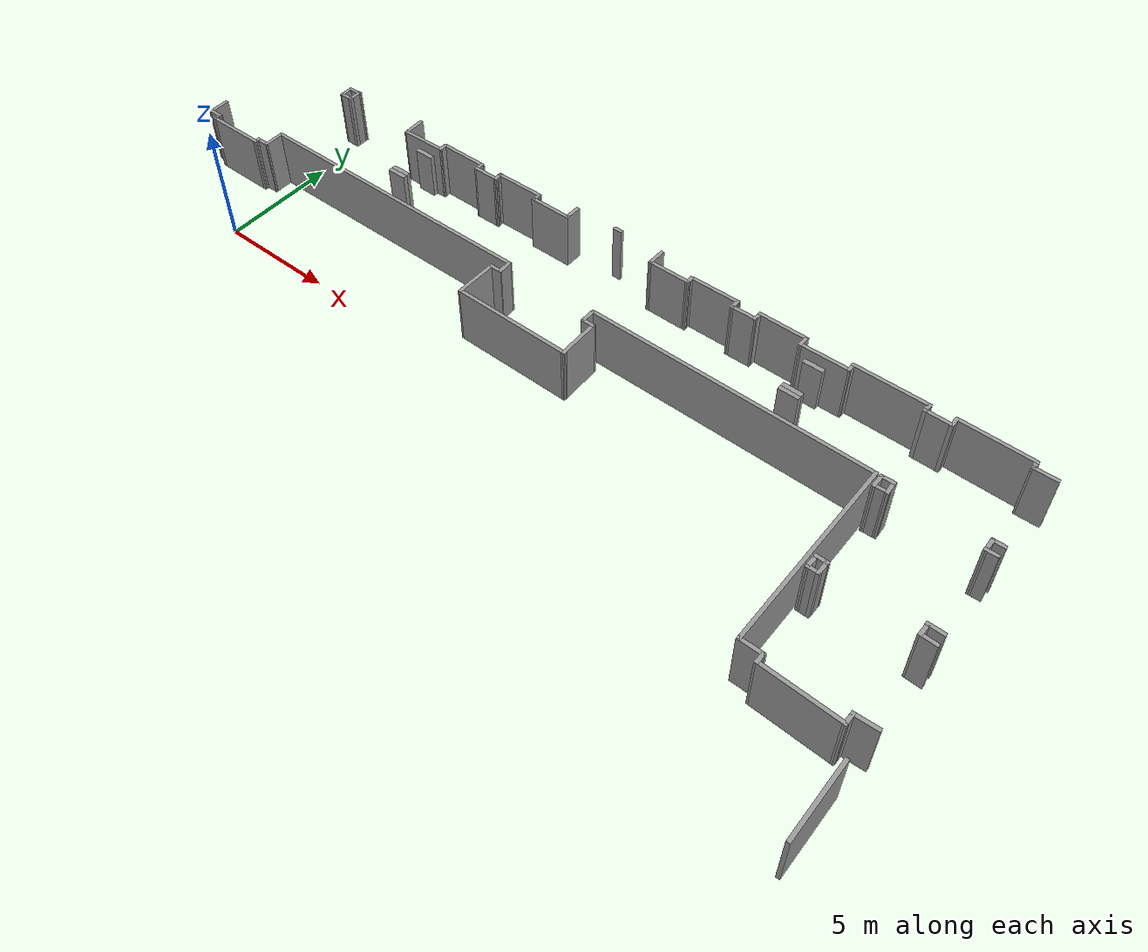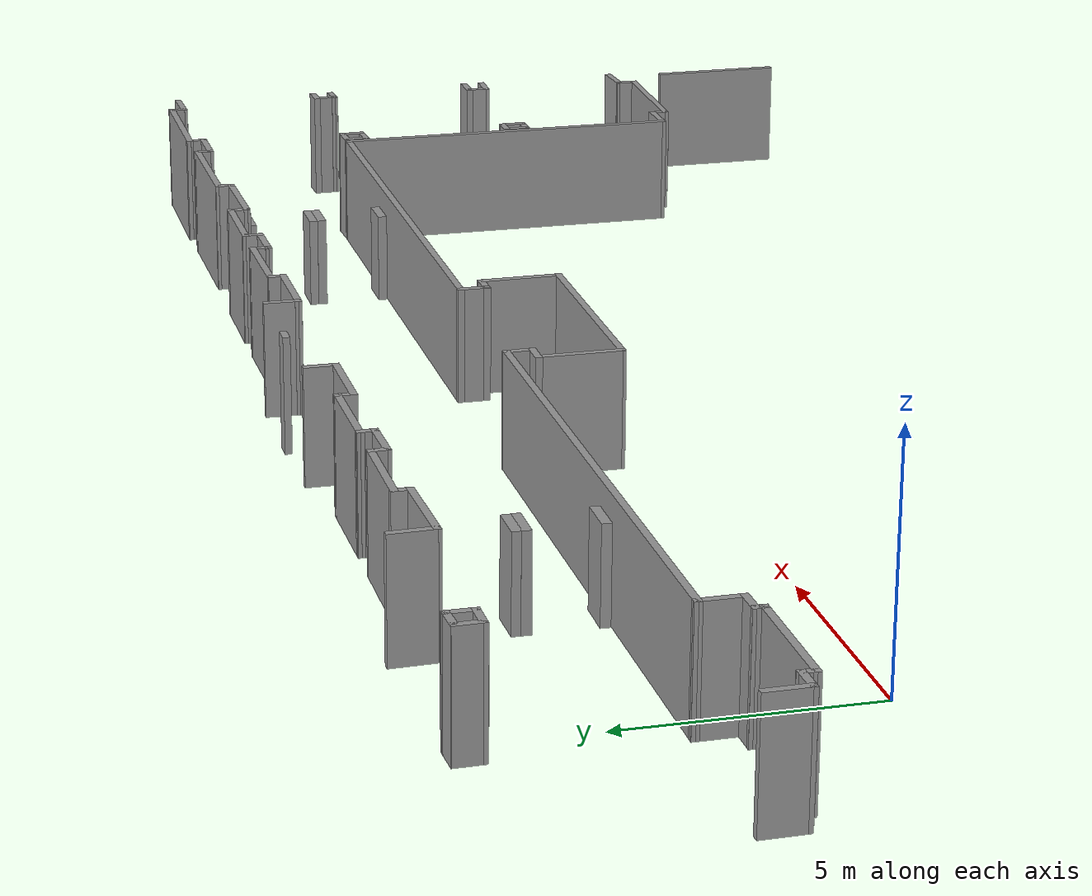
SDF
<sdf version="1.7">
 <model name="TD_n1_largo">
  <pose>-6.3187 -9.13173 0 0 -0 0</pose>
  <link name="Door_10">
   <collision name="Door_10_Collision">
    <geometry><box><size>0.833875 0.2 2</size></box></geometry>
    <pose>0 0 1 0 -0 0</pose>
   </collision>
   <visual name="Door_10_Visual">
    <pose>0 0 1 0 -0 0</pose>
    <geometry><box><size>0.833875 0.2 2</size></box></geometry>
    <material>
     <script><uri>file://media/materials/scripts/gazebo.material</uri><name>Gazebo/Grey</name></script>
    </material>
   </visual>
   <pose>29.7761 16.0483 0 0 -0 0</pose>
  </link>
  <link name="Door_11">
   <collision name="Door_11_Collision">
    <geometry><box><size>0.807425 0.2 2</size></box></geometry>
    <pose>0 0 1 0 -0 0</pose>
   </collision>
   <visual name="Door_11_Visual">
    <pose>0 0 1 0 -0 0</pose>
    <geometry><box><size>0.807425 0.2 2</size></box></geometry>
    <material>
     <script><uri>file://media/materials/scripts/gazebo.material</uri><name>Gazebo/Grey</name></script>
    </material>
   </visual>
   <pose>29.7497 13.0269 0 0 0 -3.14159</pose>
  </link>
  <link name="Door_12">
   <collision name="Door_12_Collision">
    <geometry><box><size>0.814523 0.2 2</size></box></geometry>
    <pose>0 0 1 0 -0 0</pose>
   </collision>
   <visual name="Door_12_Visual">
    <pose>0 0 1 0 -0 0</pose>
    <geometry><box><size>0.814523 0.2 2</size></box></geometry>
    <material>
     <script><uri>file://media/materials/scripts/gazebo.material</uri><name>Gazebo/Grey</name></script>
    </material>
   </visual>
   <pose>10.7562 14.6384 0 0 -0 -3.1326</pose>
  </link>
  <link name="Door_13">
   <collision name="Door_13_Collision">
    <geometry><box><size>0.827673 0.2 2</size></box></geometry>
    <pose>0 0 1 0 -0 0</pose>
   </collision>
   <visual name="Door_13_Visual">
    <pose>0 0 1 0 -0 0</pose>
    <geometry><box><size>0.827673 0.2 2</size></box></geometry>
    <material>
     <script><uri>file://media/materials/scripts/gazebo.material</uri><name>Gazebo/Grey</name></script>
    </material>
   </visual>
   <pose>10.762 14.4567 0 0 -0 0</pose>
  </link>
  <link name="Door_14">
   <collision name="Door_14_Collision">
    <geometry><box><size>0.821098 0.2 2</size></box></geometry>
    <pose>0 0 1 0 -0 0</pose>
   </collision>
   <visual name="Door_14_Visual">
    <pose>0 0 1 0 -0 0</pose>
    <geometry><box><size>0.821098 0.2 2</size></box></geometry>
    <material>
     <script><uri>file://media/materials/scripts/gazebo.material</uri><name>Gazebo/Grey</name></script>
    </material>
   </visual>
   <pose>10.7555 16.0808 0 0 -0 0</pose>
  </link>
  <link name="Door_15">
   <collision name="Door_15_Collision">
    <geometry><box><size>0.83 0.2 2</size></box></geometry>
    <pose>0 0 1 0 -0 0</pose>
   </collision>
   <visual name="Door_15_Visual">
    <pose>0 0 1 0 -0 0</pose>
    <geometry><box><size>0.83 0.2 2</size></box></geometry>
    <material>
     <script><uri>file://media/materials/scripts/gazebo.material</uri><name>Gazebo/Grey</name></script>
    </material>
   </visual>
   <pose>10.7527 13.0109 0 0 -0 3.13494</pose>
  </link>
  <link name="Door_8">
   <collision name="Door_8_Collision">
    <geometry><box><size>0.864128 0.2 2</size></box></geometry>
    <pose>0 0 1 0 -0 0</pose>
   </collision>
   <visual name="Door_8_Visual">
    <pose>0 0 1 0 -0 0</pose>
    <geometry><box><size>0.864128 0.2 2</size></box></geometry>
    <material>
     <script><uri>file://media/materials/scripts/gazebo.material</uri><name>Gazebo/Grey</name></script>
    </material>
   </visual>
   <pose>29.7933 14.4349 0 0 -0 0</pose>
  </link>
  <link name="Door_9">
   <collision name="Door_9_Collision">
    <geometry><box><size>0.851141 0.2 2</size></box></geometry>
    <pose>0 0 1 0 -0 0</pose>
   </collision>
   <visual name="Door_9_Visual">
    <pose>0 0 1 0 -0 0</pose>
    <geometry><box><size>0.851141 0.2 2</size></box></geometry>
    <material>
     <script><uri>file://media/materials/scripts/gazebo.material</uri><name>Gazebo/Grey</name></script>
    </material>
   </visual>
   <pose>29.7912 14.6154 0 0 -0 3.13243</pose>
  </link>
  <link name="Wall_411">
   <collision name="Wall_411_Collision">
    <geometry><box><size>0.930723 0.15 2.5</size></box></geometry>
    <pose>0 0 1.25 0 -0 0</pose>
   </collision>
   <visual name="Wall_411_Visual">
    <pose>0 0 1.25 0 -0 0</pose>
    <geometry><box><size>0.930723 0.15 2.5</size></box></geometry>
    <material>
     <script><uri>file://media/materials/scripts/gazebo.material</uri><name>Gazebo/Grey</name></script>
     <ambient>1 1 1 1</ambient>
    </material>
    <meta><layer>0</layer></meta>
   </visual>
   <pose>2.2234 12.4396 0 0 -0 -1.55385</pose>
  </link>
  <link name="Wall_412">
   <collision name="Wall_412_Collision">
    <geometry><box><size>0.647447 0.15 2.5</size></box></geometry>
    <pose>0 0 1.25 0 -0 0</pose>
   </collision>
   <visual name="Wall_412_Visual">
    <pose>0 0 1.25 0 -0 0</pose>
    <geometry><box><size>0.647447 0.15 2.5</size></box></geometry>
    <material>
     <script><uri>file://media/materials/scripts/gazebo.material</uri><name>Gazebo/Grey</name></script>
     <ambient>1 1 1 1</ambient>
    </material>
    <meta><layer>0</layer></meta>
   </visual>
   <pose>2.47863 12.0511 0 0 -0 0.006509</pose>
  </link>
  <link name="Wall_413">
   <collision name="Wall_413_Collision">
    <geometry><box><size>0.385426 0.15 2.5</size></box></geometry>
    <pose>0 0 1.25 0 -0 0</pose>
   </collision>
   <visual name="Wall_413_Visual">
    <pose>0 0 1.25 0 -0 0</pose>
    <geometry><box><size>0.385426 0.15 2.5</size></box></geometry>
    <material>
     <script><uri>file://media/materials/scripts/gazebo.material</uri><name>Gazebo/Grey</name></script>
     <ambient>1 1 1 1</ambient>
    </material>
    <meta><layer>0</layer></meta>
   </visual>
   <pose>2.72726 11.9354 0 0 -0 -1.5708</pose>
  </link>
  <link name="Wall_414">
   <collision name="Wall_414_Collision">
    <geometry><box><size>2.64161 0.15 2.5</size></box></geometry>
    <pose>0 0 1.25 0 -0 0</pose>
   </collision>
   <visual name="Wall_414_Visual">
    <pose>0 0 1.25 0 -0 0</pose>
    <geometry><box><size>2.64161 0.15 2.5</size></box></geometry>
    <material>
     <script><uri>file://media/materials/scripts/gazebo.material</uri><name>Gazebo/Grey</name></script>
     <ambient>1 1 1 1</ambient>
    </material>
    <meta><layer>0</layer></meta>
   </visual>
   <pose>3.97306 11.8213 0 0 -0 0.002697</pose>
  </link>
  <link name="Wall_415">
   <collision name="Wall_415_Collision">
    <geometry><box><size>0.30925 0.15 2.5</size></box></geometry>
    <pose>0 0 1.25 0 -0 0</pose>
   </collision>
   <visual name="Wall_415_Visual">
    <pose>0 0 1.25 0 -0 0</pose>
    <geometry><box><size>0.30925 0.15 2.5</size></box></geometry>
    <material>
     <script><uri>file://media/materials/scripts/gazebo.material</uri><name>Gazebo/Grey</name></script>
     <ambient>1 1 1 1</ambient>
    </material>
    <meta><layer>0</layer></meta>
   </visual>
   <pose>5.21886 11.904 0 0 -0 1.5708</pose>
  </link>
  <link name="Wall_416">
   <collision name="Wall_416_Collision">
    <geometry><box><size>0.641078 0.15 2.5</size></box></geometry>
    <pose>0 0 1.25 0 -0 0</pose>
   </collision>
   <visual name="Wall_416_Visual">
    <pose>0 0 1.25 0 -0 0</pose>
    <geometry><box><size>0.641078 0.15 2.5</size></box></geometry>
    <material>
     <script><uri>file://media/materials/scripts/gazebo.material</uri><name>Gazebo/Grey</name></script>
     <ambient>1 1 1 1</ambient>
    </material>
    <meta><layer>0</layer></meta>
   </visual>
   <pose>5.46436 11.9876 0 0 -0 0.017294</pose>
  </link>
  <link name="Wall_417">
   <collision name="Wall_417_Collision">
    <geometry><box><size>0.967438 0.15 2.5</size></box></geometry>
    <pose>0 0 1.25 0 -0 0</pose>
   </collision>
   <visual name="Wall_417_Visual">
    <pose>0 0 1.25 0 -0 0</pose>
    <geometry><box><size>0.967438 0.15 2.5</size></box></geometry>
    <material>
     <script><uri>file://media/materials/scripts/gazebo.material</uri><name>Gazebo/Grey</name></script>
     <ambient>1 1 1 1</ambient>
    </material>
    <meta><layer>0</layer></meta>
   </visual>
   <pose>5.70552 12.4006 0 0 -0 1.58143</pose>
  </link>
  <link name="Wall_419">
   <collision name="Wall_419_Collision">
    <geometry><box><size>12.6567 0.15 2.5</size></box></geometry>
    <pose>0 0 1.25 0 -0 0</pose>
   </collision>
   <visual name="Wall_419_Visual">
    <pose>0 0 1.25 0 -0 0</pose>
    <geometry><box><size>12.6567 0.15 2.5</size></box></geometry>
    <material>
     <script><uri>file://media/materials/scripts/gazebo.material</uri><name>Gazebo/Grey</name></script>
     <ambient>1 1 1 1</ambient>
    </material>
    <meta><layer>0</layer></meta>
   </visual>
   <pose>11.9545 12.8354 0 0 -0 0.004173</pose>
  </link>
  <link name="Wall_420">
   <collision name="Wall_420_Collision">
    <geometry><box><size>0.655404 0.15 2.5</size></box></geometry>
    <pose>0 0 1.25 0 -0 0</pose>
   </collision>
   <visual name="Wall_420_Visual">
    <pose>0 0 1.25 0 -0 0</pose>
    <geometry><box><size>0.655404 0.15 2.5</size></box></geometry>
    <material>
     <script><uri>file://media/materials/scripts/gazebo.material</uri><name>Gazebo/Grey</name></script>
     <ambient>1 1 1 1</ambient>
    </material>
    <meta><layer>0</layer></meta>
   </visual>
   <pose>18.2211 12.6088 0 0 -0 -1.51821</pose>
  </link>
  <link name="Wall_423">
   <collision name="Wall_423_Collision">
    <geometry><box><size>0.59009 0.15 2.5</size></box></geometry>
    <pose>0 0 1.25 0 -0 0</pose>
   </collision>
   <visual name="Wall_423_Visual">
    <pose>0 0 1.25 0 -0 0</pose>
    <geometry><box><size>0.59009 0.15 2.5</size></box></geometry>
    <material>
     <script><uri>file://media/materials/scripts/gazebo.material</uri><name>Gazebo/Grey</name></script>
     <ambient>1 1 1 1</ambient>
    </material>
    <meta><layer>0</layer></meta>
   </visual>
   <pose>18.0056 12.3329 0 0 -0 3.14159</pose>
  </link>
  <link name="Wall_424">
   <collision name="Wall_424_Collision">
    <geometry><box><size>1.86166 0.15 2.5</size></box></geometry>
    <pose>0 0 1.25 0 -0 0</pose>
   </collision>
   <visual name="Wall_424_Visual">
    <pose>0 0 1.25 0 -0 0</pose>
    <geometry><box><size>1.86166 0.15 2.5</size></box></geometry>
    <material>
     <script><uri>file://media/materials/scripts/gazebo.material</uri><name>Gazebo/Grey</name></script>
     <ambient>1 1 1 1</ambient>
    </material>
    <meta><layer>0</layer></meta>
   </visual>
   <pose>17.7858 11.477 0 0 -0 -1.5708</pose>
  </link>
  <link name="Wall_425">
   <collision name="Wall_425_Collision">
    <geometry><box><size>5.1 0.15 2.5</size></box></geometry>
    <pose>0 0 1.25 0 -0 0</pose>
   </collision>
   <visual name="Wall_425_Visual">
    <pose>0 0 1.25 0 -0 0</pose>
    <geometry><box><size>5.1 0.15 2.5</size></box></geometry>
    <material>
     <script><uri>file://media/materials/scripts/gazebo.material</uri><name>Gazebo/Grey</name></script>
     <ambient>1 1 1 1</ambient>
    </material>
    <meta><layer>0</layer></meta>
   </visual>
   <pose>20.2608 10.6096 0 0 -0 -0.004673</pose>
  </link>
  <link name="Wall_426">
   <collision name="Wall_426_Collision">
    <geometry><box><size>1.83917 0.15 2.5</size></box></geometry>
    <pose>0 0 1.25 0 -0 0</pose>
   </collision>
   <visual name="Wall_426_Visual">
    <pose>0 0 1.25 0 -0 0</pose>
    <geometry><box><size>1.83917 0.15 2.5</size></box></geometry>
    <material>
     <script><uri>file://media/materials/scripts/gazebo.material</uri><name>Gazebo/Grey</name></script>
     <ambient>1 1 1 1</ambient>
    </material>
    <meta><layer>0</layer></meta>
   </visual>
   <pose>22.7242 11.4423 0 0 -0 1.58449</pose>
  </link>
  <link name="Wall_427">
   <collision name="Wall_427_Collision">
    <geometry><box><size>0.589482 0.15 2.5</size></box></geometry>
    <pose>0 0 1.25 0 -0 0</pose>
   </collision>
   <visual name="Wall_427_Visual">
    <pose>0 0 1.25 0 -0 0</pose>
    <geometry><box><size>0.589482 0.15 2.5</size></box></geometry>
    <material>
     <script><uri>file://media/materials/scripts/gazebo.material</uri><name>Gazebo/Grey</name></script>
     <ambient>1 1 1 1</ambient>
    </material>
    <meta><layer>0</layer></meta>
   </visual>
   <pose>22.4929 12.2866 0 0 -0 3.14159</pose>
  </link>
  <link name="Wall_428">
   <collision name="Wall_428_Collision">
    <geometry><box><size>0.705135 0.15 2.5</size></box></geometry>
    <pose>0 0 1.25 0 -0 0</pose>
   </collision>
   <visual name="Wall_428_Visual">
    <pose>0 0 1.25 0 -0 0</pose>
    <geometry><box><size>0.705135 0.15 2.5</size></box></geometry>
    <material>
     <script><uri>file://media/materials/scripts/gazebo.material</uri><name>Gazebo/Grey</name></script>
     <ambient>1 1 1 1</ambient>
    </material>
    <meta><layer>0</layer></meta>
   </visual>
   <pose>22.2732 12.5642 0 0 -0 1.5708</pose>
  </link>
  <link name="Wall_429">
   <collision name="Wall_429_Collision">
    <geometry><box><size>11.993 0.15 2.5</size></box></geometry>
    <pose>0 0 1.25 0 -0 0</pose>
   </collision>
   <visual name="Wall_429_Visual">
    <pose>0 0 1.25 0 -0 0</pose>
    <geometry><box><size>11.993 0.15 2.5</size></box></geometry>
    <material>
     <script><uri>file://media/materials/scripts/gazebo.material</uri><name>Gazebo/Grey</name></script>
     <ambient>1 1 1 1</ambient>
    </material>
    <meta><layer>0</layer></meta>
   </visual>
   <pose>28.1946 12.8417 0 0 -0 0</pose>
  </link>
  <link name="Wall_430">
   <collision name="Wall_430_Collision">
    <geometry><box><size>8.0607 0.15 2.5</size></box></geometry>
    <pose>0 0 1.25 0 -0 0</pose>
   </collision>
   <visual name="Wall_430_Visual">
    <pose>0 0 1.25 0 -0 0</pose>
    <geometry><box><size>8.0607 0.15 2.5</size></box></geometry>
    <material>
     <script><uri>file://media/materials/scripts/gazebo.material</uri><name>Gazebo/Grey</name></script>
     <ambient>1 1 1 1</ambient>
    </material>
    <meta><layer>0</layer></meta>
   </visual>
   <pose>34.1276 8.8864 0 0 -0 -1.56787</pose>
  </link>
  <link name="Wall_432">
   <collision name="Wall_432_Collision">
    <geometry><box><size>1.00583 0.15 2.5</size></box></geometry>
    <pose>0 0 1.25 0 -0 0</pose>
   </collision>
   <visual name="Wall_432_Visual">
    <pose>0 0 1.25 0 -0 0</pose>
    <geometry><box><size>1.00583 0.15 2.5</size></box></geometry>
    <material>
     <script><uri>file://media/materials/scripts/gazebo.material</uri><name>Gazebo/Grey</name></script>
     <ambient>1 1 1 1</ambient>
    </material>
    <meta><layer>0</layer></meta>
   </visual>
   <pose>34.5671 4.90794 0 0 -0 0</pose>
  </link>
  <link name="Wall_433">
   <collision name="Wall_433_Collision">
    <geometry><box><size>0.473829 0.15 2.5</size></box></geometry>
    <pose>0 0 1.25 0 -0 0</pose>
   </collision>
   <visual name="Wall_433_Visual">
    <pose>0 0 1.25 0 -0 0</pose>
    <geometry><box><size>0.473829 0.15 2.5</size></box></geometry>
    <material>
     <script><uri>file://media/materials/scripts/gazebo.material</uri><name>Gazebo/Grey</name></script>
     <ambient>1 1 1 1</ambient>
    </material>
    <meta><layer>0</layer></meta>
   </visual>
   <pose>34.995 4.74602 0 0 -0 -1.5708</pose>
  </link>
  <link name="Wall_434">
   <collision name="Wall_434_Collision">
    <geometry><box><size>3.20464 0.15 2.5</size></box></geometry>
    <pose>0 0 1.25 0 -0 0</pose>
   </collision>
   <visual name="Wall_434_Visual">
    <pose>0 0 1.25 0 -0 0</pose>
    <geometry><box><size>3.20464 0.15 2.5</size></box></geometry>
    <material>
     <script><uri>file://media/materials/scripts/gazebo.material</uri><name>Gazebo/Grey</name></script>
     <ambient>1 1 1 1</ambient>
    </material>
    <meta><layer>0</layer></meta>
   </visual>
   <pose>36.5216 4.54941 0 0 -0 -0.022723</pose>
  </link>
  <link name="Wall_435">
   <collision name="Wall_435_Collision">
    <geometry><box><size>0.54322 0.15 2.5</size></box></geometry>
    <pose>0 0 1.25 0 -0 0</pose>
   </collision>
   <visual name="Wall_435_Visual">
    <pose>0 0 1.25 0 -0 0</pose>
    <geometry><box><size>0.54322 0.15 2.5</size></box></geometry>
    <material>
     <script><uri>file://media/materials/scripts/gazebo.material</uri><name>Gazebo/Grey</name></script>
     <ambient>1 1 1 1</ambient>
    </material>
    <meta><layer>0</layer></meta>
   </visual>
   <pose>38.0482 4.71133 0 0 -0 1.5708</pose>
  </link>
  <link name="Wall_436">
   <collision name="Wall_436_Collision">
    <geometry><box><size>0.983986 0.15 2.5</size></box></geometry>
    <pose>0 0 1.25 0 -0 0</pose>
   </collision>
   <visual name="Wall_436_Visual">
    <pose>0 0 1.25 0 -0 0</pose>
    <geometry><box><size>0.983986 0.15 2.5</size></box></geometry>
    <material>
     <script><uri>file://media/materials/scripts/gazebo.material</uri><name>Gazebo/Grey</name></script>
     <ambient>1 1 1 1</ambient>
    </material>
    <meta><layer>0</layer></meta>
   </visual>
   <pose>38.4646 4.93107 0 0 -0 0.055499</pose>
  </link>
  <link name="Wall_439">
   <collision name="Wall_439_Collision">
    <geometry><box><size>3.06455 0.15 2.5</size></box></geometry>
    <pose>0 0 1.25 0 -0 0</pose>
   </collision>
   <visual name="Wall_439_Visual">
    <pose>0 0 1.25 0 -0 0</pose>
    <geometry><box><size>3.06455 0.15 2.5</size></box></geometry>
    <material>
     <script><uri>file://media/materials/scripts/gazebo.material</uri><name>Gazebo/Grey</name></script>
     <ambient>1 1 1 1</ambient>
    </material>
    <meta><layer>0</layer></meta>
   </visual>
   <pose>38.6612 2.10913 0 0 -0 -1.56286</pose>
  </link>
  <link name="Wall_507">
   <collision name="Wall_507_Collision">
    <geometry><box><size>0.539581 0.15 2.5</size></box></geometry>
    <pose>0 0 1.25 0 -0 0</pose>
   </collision>
   <visual name="Wall_507_Visual">
    <pose>0 0 1.25 0 -0 0</pose>
    <geometry><box><size>0.539581 0.15 2.5</size></box></geometry>
    <material>
     <script><uri>file://media/materials/scripts/gazebo.material</uri><name>Gazebo/Grey</name></script>
     <ambient>1 1 1 1</ambient>
    </material>
    <meta><layer>0</layer></meta>
   </visual>
   <pose>34.5441 8.84377 0 0 -0 0.002465</pose>
  </link>
  <link name="Wall_508">
   <collision name="Wall_508_Collision">
    <geometry><box><size>0.640034 0.15 2.5</size></box></geometry>
    <pose>0 0 1.25 0 -0 0</pose>
   </collision>
   <visual name="Wall_508_Visual">
    <pose>0 0 1.25 0 -0 0</pose>
    <geometry><box><size>0.640034 0.15 2.5</size></box></geometry>
    <material>
     <script><uri>file://media/materials/scripts/gazebo.material</uri><name>Gazebo/Grey</name></script>
     <ambient>1 1 1 1</ambient>
    </material>
    <meta><layer>0</layer></meta>
   </visual>
   <pose>34.7389 8.59939 0 0 -0 -1.5708</pose>
  </link>
  <link name="Wall_509">
   <collision name="Wall_509_Collision">
    <geometry><box><size>0.552651 0.15 2.5</size></box></geometry>
    <pose>0 0 1.25 0 -0 0</pose>
   </collision>
   <visual name="Wall_509_Visual">
    <pose>0 0 1.25 0 -0 0</pose>
    <geometry><box><size>0.552651 0.15 2.5</size></box></geometry>
    <material>
     <script><uri>file://media/materials/scripts/gazebo.material</uri><name>Gazebo/Grey</name></script>
     <ambient>1 1 1 1</ambient>
    </material>
    <meta><layer>0</layer></meta>
   </visual>
   <pose>34.5377 8.35453 0 0 -0 3.14159</pose>
  </link>
  <link name="Wall_510">
   <collision name="Wall_510_Collision">
    <geometry><box><size>0.605078 0.15 2.5</size></box></geometry>
    <pose>0 0 1.25 0 -0 0</pose>
   </collision>
   <visual name="Wall_510_Visual">
    <pose>0 0 1.25 0 -0 0</pose>
    <geometry><box><size>0.605078 0.15 2.5</size></box></geometry>
    <material>
     <script><uri>file://media/materials/scripts/gazebo.material</uri><name>Gazebo/Grey</name></script>
     <ambient>1 1 1 1</ambient>
    </material>
    <meta><layer>0</layer></meta>
   </visual>
   <pose>34.3453 8.5819 0 0 -0 1.53235</pose>
  </link>
  <link name="Wall_512">
   <collision name="Wall_512_Collision">
    <geometry><box><size>0.70659 0.15 2.5</size></box></geometry>
    <pose>0 0 1.25 0 -0 0</pose>
   </collision>
   <visual name="Wall_512_Visual">
    <pose>0 0 1.25 0 -0 0</pose>
    <geometry><box><size>0.70659 0.15 2.5</size></box></geometry>
    <material>
     <script><uri>file://media/materials/scripts/gazebo.material</uri><name>Gazebo/Grey</name></script>
     <ambient>1 1 1 1</ambient>
    </material>
    <meta><layer>0</layer></meta>
   </visual>
   <pose>38.5233 8.86068 0 0 -0 0</pose>
  </link>
  <link name="Wall_514">
   <collision name="Wall_514_Collision">
    <geometry><box><size>0.706793 0.15 2.5</size></box></geometry>
    <pose>0 0 1.25 0 -0 0</pose>
   </collision>
   <visual name="Wall_514_Visual">
    <pose>0 0 1.25 0 -0 0</pose>
    <geometry><box><size>0.706793 0.15 2.5</size></box></geometry>
    <material>
     <script><uri>file://media/materials/scripts/gazebo.material</uri><name>Gazebo/Grey</name></script>
     <ambient>1 1 1 1</ambient>
    </material>
    <meta><layer>0</layer></meta>
   </visual>
   <pose>38.532 8.4085 0 0 -0 3.11035</pose>
  </link>
  <link name="Wall_515">
   <collision name="Wall_515_Collision">
    <geometry><box><size>0.58487 0.15 2.5</size></box></geometry>
    <pose>0 0 1.25 0 -0 0</pose>
   </collision>
   <visual name="Wall_515_Visual">
    <pose>0 0 1.25 0 -0 0</pose>
    <geometry><box><size>0.58487 0.15 2.5</size></box></geometry>
    <material>
     <script><uri>file://media/materials/scripts/gazebo.material</uri><name>Gazebo/Grey</name></script>
     <ambient>1 1 1 1</ambient>
    </material>
    <meta><layer>0</layer></meta>
   </visual>
   <pose>38.2581 8.63459 0 0 -0 1.5508</pose>
  </link>
  <link name="Wall_522">
   <collision name="Wall_522_Collision">
    <geometry><box><size>0.60811 0.15 2.5</size></box></geometry>
    <pose>0 0 1.25 0 -0 0</pose>
   </collision>
   <visual name="Wall_522_Visual">
    <pose>0 0 1.25 0 -0 0</pose>
    <geometry><box><size>0.60811 0.15 2.5</size></box></geometry>
    <material>
     <script><uri>file://media/materials/scripts/gazebo.material</uri><name>Gazebo/Grey</name></script>
     <ambient>1 1 1 1</ambient>
    </material>
    <meta><layer>0</layer></meta>
   </visual>
   <pose>34.5564 12.8536 0 0 -0 0.04544</pose>
  </link>
  <link name="Wall_523">
   <collision name="Wall_523_Collision">
    <geometry><box><size>0.61319 0.15 2.5</size></box></geometry>
    <pose>0 0 1.25 0 -0 0</pose>
   </collision>
   <visual name="Wall_523_Visual">
    <pose>0 0 1.25 0 -0 0</pose>
    <geometry><box><size>0.61319 0.15 2.5</size></box></geometry>
    <material>
     <script><uri>file://media/materials/scripts/gazebo.material</uri><name>Gazebo/Grey</name></script>
     <ambient>1 1 1 1</ambient>
    </material>
    <meta><layer>0</layer></meta>
   </visual>
   <pose>34.797 12.6327 0 0 -0 -1.52084</pose>
  </link>
  <link name="Wall_524">
   <collision name="Wall_524_Collision">
    <geometry><box><size>0.636293 0.15 2.5</size></box></geometry>
    <pose>0 0 1.25 0 -0 0</pose>
   </collision>
   <visual name="Wall_524_Visual">
    <pose>0 0 1.25 0 -0 0</pose>
    <geometry><box><size>0.636293 0.15 2.5</size></box></geometry>
    <material>
     <script><uri>file://media/materials/scripts/gazebo.material</uri><name>Gazebo/Grey</name></script>
     <ambient>1 1 1 1</ambient>
    </material>
    <meta><layer>0</layer></meta>
   </visual>
   <pose>34.5657 12.3898 0 0 -0 -3.09401</pose>
  </link>
  <link name="Wall_525">
   <collision name="Wall_525_Collision">
    <geometry><box><size>0.59009 0.15 2.5</size></box></geometry>
    <pose>0 0 1.25 0 -0 0</pose>
   </collision>
   <visual name="Wall_525_Visual">
    <pose>0 0 1.25 0 -0 0</pose>
    <geometry><box><size>0.59009 0.15 2.5</size></box></geometry>
    <material>
     <script><uri>file://media/materials/scripts/gazebo.material</uri><name>Gazebo/Grey</name></script>
     <ambient>1 1 1 1</ambient>
    </material>
    <meta><layer>0</layer></meta>
   </visual>
   <pose>34.3229 12.598 0 0 -0 1.5708</pose>
  </link>
  <link name="Wall_527">
   <collision name="Wall_527_Collision">
    <geometry><box><size>0.571013 0.15 2.5</size></box></geometry>
    <pose>0 0 1.25 0 -0 0</pose>
   </collision>
   <visual name="Wall_527_Visual">
    <pose>0 0 1.25 0 -0 0</pose>
    <geometry><box><size>0.571013 0.15 2.5</size></box></geometry>
    <material>
     <script><uri>file://media/materials/scripts/gazebo.material</uri><name>Gazebo/Grey</name></script>
     <ambient>1 1 1 1</ambient>
    </material>
    <meta><layer>0</layer></meta>
   </visual>
   <pose>38.534 12.8392 0 0 -0 0.018934</pose>
  </link>
  <link name="Wall_529">
   <collision name="Wall_529_Collision">
    <geometry><box><size>0.547631 0.15 2.5</size></box></geometry>
    <pose>0 0 1.25 0 -0 0</pose>
   </collision>
   <visual name="Wall_529_Visual">
    <pose>0 0 1.25 0 -0 0</pose>
    <geometry><box><size>0.547631 0.15 2.5</size></box></geometry>
    <material>
     <script><uri>file://media/materials/scripts/gazebo.material</uri><name>Gazebo/Grey</name></script>
     <ambient>1 1 1 1</ambient>
    </material>
    <meta><layer>0</layer></meta>
   </visual>
   <pose>38.5329 12.3869 0 0 -0 -3.10827</pose>
  </link>
  <link name="Wall_530">
   <collision name="Wall_530_Collision">
    <geometry><box><size>0.559975 0.15 2.5</size></box></geometry>
    <pose>0 0 1.25 0 -0 0</pose>
   </collision>
   <visual name="Wall_530_Visual">
    <pose>0 0 1.25 0 -0 0</pose>
    <geometry><box><size>0.559975 0.15 2.5</size></box></geometry>
    <material>
     <script><uri>file://media/materials/scripts/gazebo.material</uri><name>Gazebo/Grey</name></script>
     <ambient>1 1 1 1</ambient>
    </material>
    <meta><layer>0</layer></meta>
   </visual>
   <pose>38.3346 12.5853 0 0 -0 1.5708</pose>
  </link>
  <link name="Wall_568">
   <collision name="Wall_568_Collision">
    <geometry><box><size>1.00719 0.15 2.5</size></box></geometry>
    <pose>0 0 1.25 0 -0 0</pose>
   </collision>
   <visual name="Wall_568_Visual">
    <pose>0 0 1.25 0 -0 0</pose>
    <geometry><box><size>1.00719 0.15 2.5</size></box></geometry>
    <material>
     <script><uri>file://media/materials/scripts/gazebo.material</uri><name>Gazebo/Grey</name></script>
     <ambient>1 1 1 1</ambient>
    </material>
    <meta><layer>0</layer></meta>
   </visual>
   <pose>38.4576 16.2984 0 0 -0 -3.12119</pose>
  </link>
  <link name="Wall_569">
   <collision name="Wall_569_Collision">
    <geometry><box><size>0.447845 0.15 2.5</size></box></geometry>
    <pose>0 0 1.25 0 -0 0</pose>
   </collision>
   <visual name="Wall_569_Visual">
    <pose>0 0 1.25 0 -0 0</pose>
    <geometry><box><size>0.447845 0.15 2.5</size></box></geometry>
    <material>
     <script><uri>file://media/materials/scripts/gazebo.material</uri><name>Gazebo/Grey</name></script>
     <ambient>1 1 1 1</ambient>
    </material>
    <meta><layer>0</layer></meta>
   </visual>
   <pose>38.0203 16.4384 0 0 -0 1.62955</pose>
  </link>
  <link name="Wall_587">
   <collision name="Wall_587_Collision">
    <geometry><box><size>3.10186 0.15 2.5</size></box></geometry>
    <pose>0 0 1.25 0 -0 0</pose>
   </collision>
   <visual name="Wall_587_Visual">
    <pose>0 0 1.25 0 -0 0</pose>
    <geometry><box><size>3.10186 0.15 2.5</size></box></geometry>
    <material>
     <script><uri>file://media/materials/scripts/gazebo.material</uri><name>Gazebo/Grey</name></script>
     <ambient>1 1 1 1</ambient>
    </material>
    <meta><layer>0</layer></meta>
   </visual>
   <pose>36.5357 16.592 0 0 -0 3.1382</pose>
  </link>
  <link name="Wall_588">
   <collision name="Wall_588_Collision">
    <geometry><box><size>0.492522 0.15 2.5</size></box></geometry>
    <pose>0 0 1.25 0 -0 0</pose>
   </collision>
   <visual name="Wall_588_Visual">
    <pose>0 0 1.25 0 -0 0</pose>
    <geometry><box><size>0.492522 0.15 2.5</size></box></geometry>
    <material>
     <script><uri>file://media/materials/scripts/gazebo.material</uri><name>Gazebo/Grey</name></script>
     <ambient>1 1 1 1</ambient>
    </material>
    <meta><layer>0</layer></meta>
   </visual>
   <pose>35.0597 16.4261 0 0 -0 -1.5708</pose>
  </link>
  <link name="Wall_589">
   <collision name="Wall_589_Collision">
    <geometry><box><size>1.17515 0.15 2.5</size></box></geometry>
    <pose>0 0 1.25 0 -0 0</pose>
   </collision>
   <visual name="Wall_589_Visual">
    <pose>0 0 1.25 0 -0 0</pose>
    <geometry><box><size>1.17515 0.15 2.5</size></box></geometry>
    <material>
     <script><uri>file://media/materials/scripts/gazebo.material</uri><name>Gazebo/Grey</name></script>
     <ambient>1 1 1 1</ambient>
    </material>
    <meta><layer>0</layer></meta>
   </visual>
   <pose>34.5472 16.2553 0 0 -0 3.14131</pose>
  </link>
  <link name="Wall_590">
   <collision name="Wall_590_Collision">
    <geometry><box><size>0.451729 0.15 2.5</size></box></geometry>
    <pose>0 0 1.25 0 -0 0</pose>
   </collision>
   <visual name="Wall_590_Visual">
    <pose>0 0 1.25 0 -0 0</pose>
    <geometry><box><size>0.451729 0.15 2.5</size></box></geometry>
    <material>
     <script><uri>file://media/materials/scripts/gazebo.material</uri><name>Gazebo/Grey</name></script>
     <ambient>1 1 1 1</ambient>
    </material>
    <meta><layer>0</layer></meta>
   </visual>
   <pose>34.0343 16.4061 0 0 -0 1.57294</pose>
  </link>
  <link name="Wall_591">
   <collision name="Wall_591_Collision">
    <geometry><box><size>3.14699 0.15 2.5</size></box></geometry>
    <pose>0 0 1.25 0 -0 0</pose>
   </collision>
   <visual name="Wall_591_Visual">
    <pose>0 0 1.25 0 -0 0</pose>
    <geometry><box><size>3.14699 0.15 2.5</size></box></geometry>
    <material>
     <script><uri>file://media/materials/scripts/gazebo.material</uri><name>Gazebo/Grey</name></script>
     <ambient>1 1 1 1</ambient>
    </material>
    <meta><layer>0</layer></meta>
   </visual>
   <pose>32.5355 16.5468 0 0 -0 -3.13488</pose>
  </link>
  <link name="Wall_592">
   <collision name="Wall_592_Collision">
    <geometry><box><size>0.444556 0.15 2.5</size></box></geometry>
    <pose>0 0 1.25 0 -0 0</pose>
   </collision>
   <visual name="Wall_592_Visual">
    <pose>0 0 1.25 0 -0 0</pose>
    <geometry><box><size>0.444556 0.15 2.5</size></box></geometry>
    <material>
     <script><uri>file://media/materials/scripts/gazebo.material</uri><name>Gazebo/Grey</name></script>
     <ambient>1 1 1 1</ambient>
    </material>
    <meta><layer>0</layer></meta>
   </visual>
   <pose>31.0348 16.3894 0 0 -0 -1.5861</pose>
  </link>
  <link name="Wall_593">
   <collision name="Wall_593_Collision">
    <geometry><box><size>2.13715 0.15 2.5</size></box></geometry>
    <pose>0 0 1.25 0 -0 0</pose>
   </collision>
   <visual name="Wall_593_Visual">
    <pose>0 0 1.25 0 -0 0</pose>
    <geometry><box><size>2.13715 0.15 2.5</size></box></geometry>
    <material>
     <script><uri>file://media/materials/scripts/gazebo.material</uri><name>Gazebo/Grey</name></script>
     <ambient>1 1 1 1</ambient>
    </material>
    <meta><layer>0</layer></meta>
   </visual>
   <pose>30.0391 16.2285 0 0 -0 -3.12785</pose>
  </link>
  <link name="Wall_594">
   <collision name="Wall_594_Collision">
    <geometry><box><size>0.512044 0.15 2.5</size></box></geometry>
    <pose>0 0 1.25 0 -0 0</pose>
   </collision>
   <visual name="Wall_594_Visual">
    <pose>0 0 1.25 0 -0 0</pose>
    <geometry><box><size>0.512044 0.15 2.5</size></box></geometry>
    <material>
     <script><uri>file://media/materials/scripts/gazebo.material</uri><name>Gazebo/Grey</name></script>
     <ambient>1 1 1 1</ambient>
    </material>
    <meta><layer>0</layer></meta>
   </visual>
   <pose>29.0458 16.3959 0 0 -0 1.5708</pose>
  </link>
  <link name="Wall_595">
   <collision name="Wall_595_Collision">
    <geometry><box><size>2.12113 0.15 2.5</size></box></geometry>
    <pose>0 0 1.25 0 -0 0</pose>
   </collision>
   <visual name="Wall_595_Visual">
    <pose>0 0 1.25 0 -0 0</pose>
    <geometry><box><size>2.12113 0.15 2.5</size></box></geometry>
    <material>
     <script><uri>file://media/materials/scripts/gazebo.material</uri><name>Gazebo/Grey</name></script>
     <ambient>1 1 1 1</ambient>
    </material>
    <meta><layer>0</layer></meta>
   </visual>
   <pose>28.0602 16.5769 0 0 -0 3.14159</pose>
  </link>
  <link name="Wall_596">
   <collision name="Wall_596_Collision">
    <geometry><box><size>0.471668 0.15 2.5</size></box></geometry>
    <pose>0 0 1.25 0 -0 0</pose>
   </collision>
   <visual name="Wall_596_Visual">
    <pose>0 0 1.25 0 -0 0</pose>
    <geometry><box><size>0.471668 0.15 2.5</size></box></geometry>
    <material>
     <script><uri>file://media/materials/scripts/gazebo.material</uri><name>Gazebo/Grey</name></script>
     <ambient>1 1 1 1</ambient>
    </material>
    <meta><layer>0</layer></meta>
   </visual>
   <pose>27.0698 16.4162 0 0 -0 -1.60075</pose>
  </link>
  <link name="Wall_597">
   <collision name="Wall_597_Collision">
    <geometry><box><size>1.12874 0.15 2.5</size></box></geometry>
    <pose>0 0 1.25 0 -0 0</pose>
   </collision>
   <visual name="Wall_597_Visual">
    <pose>0 0 1.25 0 -0 0</pose>
    <geometry><box><size>1.12874 0.15 2.5</size></box></geometry>
    <material>
     <script><uri>file://media/materials/scripts/gazebo.material</uri><name>Gazebo/Grey</name></script>
     <ambient>1 1 1 1</ambient>
    </material>
    <meta><layer>0</layer></meta>
   </visual>
   <pose>26.5757 16.2488 0 0 -0 -3.12808</pose>
  </link>
  <link name="Wall_598">
   <collision name="Wall_598_Collision">
    <geometry><box><size>0.485128 0.15 2.5</size></box></geometry>
    <pose>0 0 1.25 0 -0 0</pose>
   </collision>
   <visual name="Wall_598_Visual">
    <pose>0 0 1.25 0 -0 0</pose>
    <geometry><box><size>0.485128 0.15 2.5</size></box></geometry>
    <material>
     <script><uri>file://media/materials/scripts/gazebo.material</uri><name>Gazebo/Grey</name></script>
     <ambient>1 1 1 1</ambient>
    </material>
    <meta><layer>0</layer></meta>
   </visual>
   <pose>26.0877 16.4096 0 0 -0 1.56268</pose>
  </link>
  <link name="Wall_599">
   <collision name="Wall_599_Collision">
    <geometry><box><size>2.16146 0.15 2.5</size></box></geometry>
    <pose>0 0 1.25 0 -0 0</pose>
   </collision>
   <visual name="Wall_599_Visual">
    <pose>0 0 1.25 0 -0 0</pose>
    <geometry><box><size>2.16146 0.15 2.5</size></box></geometry>
    <material>
     <script><uri>file://media/materials/scripts/gazebo.material</uri><name>Gazebo/Grey</name></script>
     <ambient>1 1 1 1</ambient>
    </material>
    <meta><layer>0</layer></meta>
   </visual>
   <pose>25.0834 16.5669 0 0 -0 -3.13159</pose>
  </link>
  <link name="Wall_655">
   <collision name="Wall_655_Collision">
    <geometry><box><size>0.403601 0.15 2.5</size></box></geometry>
    <pose>0 0 1.25 0 -0 0</pose>
   </collision>
   <visual name="Wall_655_Visual">
    <pose>0 0 1.25 0 -0 0</pose>
    <geometry><box><size>0.403601 0.15 2.5</size></box></geometry>
    <material>
     <script><uri>file://media/materials/scripts/gazebo.material</uri><name>Gazebo/Grey</name></script>
     <ambient>1 1 1 1</ambient>
    </material>
    <meta><layer>0</layer></meta>
   </visual>
   <pose>24.0398 16.4077 0 0 -0 -1.56905</pose>
  </link>
  <link name="Wall_656">
   <collision name="Wall_656_Collision">
    <geometry><box><size>1.86859 0.15 2.5</size></box></geometry>
    <pose>0 0 1.25 0 -0 0</pose>
   </collision>
   <visual name="Wall_656_Visual">
    <pose>0 0 1.25 0 -0 0</pose>
    <geometry><box><size>1.86859 0.15 2.5</size></box></geometry>
    <material>
     <script><uri>file://media/materials/scripts/gazebo.material</uri><name>Gazebo/Grey</name></script>
     <ambient>1 1 1 1</ambient>
    </material>
    <meta><layer>0</layer></meta>
   </visual>
   <pose>23.1807 16.2809 0 0 -0 3.14159</pose>
  </link>
  <link name="Wall_657">
   <collision name="Wall_657_Collision">
    <geometry><box><size>0.804153 0.15 2.5</size></box></geometry>
    <pose>0 0 1.25 0 -0 0</pose>
   </collision>
   <visual name="Wall_657_Visual">
    <pose>0 0 1.25 0 -0 0</pose>
    <geometry><box><size>0.804153 0.15 2.5</size></box></geometry>
    <material>
     <script><uri>file://media/materials/scripts/gazebo.material</uri><name>Gazebo/Grey</name></script>
     <ambient>1 1 1 1</ambient>
    </material>
    <meta><layer>0</layer></meta>
   </visual>
   <pose>22.329 16.6079 0 0 -0 1.54754</pose>
  </link>
  <link name="Wall_659">
   <collision name="Wall_659_Collision">
    <geometry><box><size>0.393815 0.15 2.5</size></box></geometry>
    <pose>0 0 1.25 0 -0 0</pose>
   </collision>
   <visual name="Wall_659_Visual">
    <pose>0 0 1.25 0 -0 0</pose>
    <geometry><box><size>0.393815 0.15 2.5</size></box></geometry>
    <material>
     <script><uri>file://media/materials/scripts/gazebo.material</uri><name>Gazebo/Grey</name></script>
     <ambient>1 1 1 1</ambient>
    </material>
    <meta><layer>0</layer></meta>
   </visual>
   <pose>20.253 16.9349 0 0 -0 3.14159</pose>
  </link>
  <link name="Wall_661">
   <collision name="Wall_661_Collision">
    <geometry><box><size>0.743141 0.15 2.5</size></box></geometry>
    <pose>0 0 1.25 0 -0 0</pose>
   </collision>
   <visual name="Wall_661_Visual">
    <pose>0 0 1.25 0 -0 0</pose>
    <geometry><box><size>0.743141 0.15 2.5</size></box></geometry>
    <material>
     <script><uri>file://media/materials/scripts/gazebo.material</uri><name>Gazebo/Grey</name></script>
     <ambient>1 1 1 1</ambient>
    </material>
    <meta><layer>0</layer></meta>
   </visual>
   <pose>18.2455 16.5775 0 0 -0 -1.5708</pose>
  </link>
  <link name="Wall_662">
   <collision name="Wall_662_Collision">
    <geometry><box><size>1.85338 0.15 2.5</size></box></geometry>
    <pose>0 0 1.25 0 -0 0</pose>
   </collision>
   <visual name="Wall_662_Visual">
    <pose>0 0 1.25 0 -0 0</pose>
    <geometry><box><size>1.85338 0.15 2.5</size></box></geometry>
    <material>
     <script><uri>file://media/materials/scripts/gazebo.material</uri><name>Gazebo/Grey</name></script>
     <ambient>1 1 1 1</ambient>
    </material>
    <meta><layer>0</layer></meta>
   </visual>
   <pose>17.3938 16.2809 0 0 -0 3.14159</pose>
  </link>
  <link name="Wall_663">
   <collision name="Wall_663_Collision">
    <geometry><box><size>0.454175 0.15 2.5</size></box></geometry>
    <pose>0 0 1.25 0 -0 0</pose>
   </collision>
   <visual name="Wall_663_Visual">
    <pose>0 0 1.25 0 -0 0</pose>
    <geometry><box><size>0.454175 0.15 2.5</size></box></geometry>
    <material>
     <script><uri>file://media/materials/scripts/gazebo.material</uri><name>Gazebo/Grey</name></script>
     <ambient>1 1 1 1</ambient>
    </material>
    <meta><layer>0</layer></meta>
   </visual>
   <pose>16.5421 16.433 0 0 -0 1.5708</pose>
  </link>
  <link name="Wall_664">
   <collision name="Wall_664_Collision">
    <geometry><box><size>2.17282 0.15 2.5</size></box></geometry>
    <pose>0 0 1.25 0 -0 0</pose>
   </collision>
   <visual name="Wall_664_Visual">
    <pose>0 0 1.25 0 -0 0</pose>
    <geometry><box><size>2.17282 0.15 2.5</size></box></geometry>
    <material>
     <script><uri>file://media/materials/scripts/gazebo.material</uri><name>Gazebo/Grey</name></script>
     <ambient>1 1 1 1</ambient>
    </material>
    <meta><layer>0</layer></meta>
   </visual>
   <pose>15.5307 16.5775 0 0 -0 -3.13407</pose>
  </link>
  <link name="Wall_665">
   <collision name="Wall_665_Collision">
    <geometry><box><size>0.438966 0.15 2.5</size></box></geometry>
    <pose>0 0 1.25 0 -0 0</pose>
   </collision>
   <visual name="Wall_665_Visual">
    <pose>0 0 1.25 0 -0 0</pose>
    <geometry><box><size>0.438966 0.15 2.5</size></box></geometry>
    <material>
     <script><uri>file://media/materials/scripts/gazebo.material</uri><name>Gazebo/Grey</name></script>
     <ambient>1 1 1 1</ambient>
    </material>
    <meta><layer>0</layer></meta>
   </visual>
   <pose>14.527 16.4254 0 0 -0 -1.51821</pose>
  </link>
  <link name="Wall_666">
   <collision name="Wall_666_Collision">
    <geometry><box><size>1.15378 0.15 2.5</size></box></geometry>
    <pose>0 0 1.25 0 -0 0</pose>
   </collision>
   <visual name="Wall_666_Visual">
    <pose>0 0 1.25 0 -0 0</pose>
    <geometry><box><size>1.15378 0.15 2.5</size></box></geometry>
    <material>
     <script><uri>file://media/materials/scripts/gazebo.material</uri><name>Gazebo/Grey</name></script>
     <ambient>1 1 1 1</ambient>
    </material>
    <meta><layer>0</layer></meta>
   </visual>
   <pose>14.0327 16.2733 0 0 -0 -3.12644</pose>
  </link>
  <link name="Wall_667">
   <collision name="Wall_667_Collision">
    <geometry><box><size>0.454555 0.15 2.5</size></box></geometry>
    <pose>0 0 1.25 0 -0 0</pose>
   </collision>
   <visual name="Wall_667_Visual">
    <pose>0 0 1.25 0 -0 0</pose>
    <geometry><box><size>0.454555 0.15 2.5</size></box></geometry>
    <material>
     <script><uri>file://media/materials/scripts/gazebo.material</uri><name>Gazebo/Grey</name></script>
     <ambient>1 1 1 1</ambient>
    </material>
    <meta><layer>0</layer></meta>
   </visual>
   <pose>13.5232 16.4178 0 0 -0 1.62075</pose>
  </link>
  <link name="Wall_668">
   <collision name="Wall_668_Collision">
    <geometry><box><size>2.14235 0.15 2.5</size></box></geometry>
    <pose>0 0 1.25 0 -0 0</pose>
   </collision>
   <visual name="Wall_668_Visual">
    <pose>0 0 1.25 0 -0 0</pose>
    <geometry><box><size>2.14235 0.15 2.5</size></box></geometry>
    <material>
     <script><uri>file://media/materials/scripts/gazebo.material</uri><name>Gazebo/Grey</name></script>
     <ambient>1 1 1 1</ambient>
    </material>
    <meta><layer>0</layer></meta>
   </visual>
   <pose>12.5194 16.5699 0 0 -0 3.14159</pose>
  </link>
  <link name="Wall_669">
   <collision name="Wall_669_Collision">
    <geometry><box><size>0.454555 0.15 2.5</size></box></geometry>
    <pose>0 0 1.25 0 -0 0</pose>
   </collision>
   <visual name="Wall_669_Visual">
    <pose>0 0 1.25 0 -0 0</pose>
    <geometry><box><size>0.454555 0.15 2.5</size></box></geometry>
    <material>
     <script><uri>file://media/materials/scripts/gazebo.material</uri><name>Gazebo/Grey</name></script>
     <ambient>1 1 1 1</ambient>
    </material>
    <meta><layer>0</layer></meta>
   </visual>
   <pose>11.5232 16.4178 0 0 -0 -1.5708</pose>
  </link>
  <link name="Wall_670">
   <collision name="Wall_670_Collision">
    <geometry><box><size>2.00572 0.15 2.5</size></box></geometry>
    <pose>0 0 1.25 0 -0 0</pose>
   </collision>
   <visual name="Wall_670_Visual">
    <pose>0 0 1.25 0 -0 0</pose>
    <geometry><box><size>2.00572 0.15 2.5</size></box></geometry>
    <material>
     <script><uri>file://media/materials/scripts/gazebo.material</uri><name>Gazebo/Grey</name></script>
     <ambient>1 1 1 1</ambient>
    </material>
    <meta><layer>0</layer></meta>
   </visual>
   <pose>10.5955 16.2429 0 0 -0 -3.11701</pose>
  </link>
  <link name="Wall_671">
   <collision name="Wall_671_Collision">
    <geometry><box><size>0.986619 0.15 2.5</size></box></geometry>
    <pose>0 0 1.25 0 -0 0</pose>
   </collision>
   <visual name="Wall_671_Visual">
    <pose>0 0 1.25 0 -0 0</pose>
    <geometry><box><size>0.986619 0.15 2.5</size></box></geometry>
    <material>
     <script><uri>file://media/materials/scripts/gazebo.material</uri><name>Gazebo/Grey</name></script>
     <ambient>1 1 1 1</ambient>
    </material>
    <meta><layer>0</layer></meta>
   </visual>
   <pose>9.65255 16.6383 0 0 -0 1.60714</pose>
  </link>
  <link name="Wall_695">
   <collision name="Wall_695_Collision">
    <geometry><box><size>0.636168 0.15 2.5</size></box></geometry>
    <pose>0 0 1.25 0 -0 0</pose>
   </collision>
   <visual name="Wall_695_Visual">
    <pose>0 0 1.25 0 -0 0</pose>
    <geometry><box><size>0.636168 0.15 2.5</size></box></geometry>
    <material>
     <script><uri>file://media/materials/scripts/gazebo.material</uri><name>Gazebo/Grey</name></script>
     <ambient>1 1 1 1</ambient>
    </material>
    <meta><layer>0</layer></meta>
   </visual>
   <pose>5.93953 16.8572 0 0 -0 0.041983</pose>
  </link>
  <link name="Wall_696">
   <collision name="Wall_696_Collision">
    <geometry><box><size>0.656103 0.15 2.5</size></box></geometry>
    <pose>0 0 1.25 0 -0 0</pose>
   </collision>
   <visual name="Wall_696_Visual">
    <pose>0 0 1.25 0 -0 0</pose>
    <geometry><box><size>0.656103 0.15 2.5</size></box></geometry>
    <material>
     <script><uri>file://media/materials/scripts/gazebo.material</uri><name>Gazebo/Grey</name></script>
     <ambient>1 1 1 1</ambient>
    </material>
    <meta><layer>0</layer></meta>
   </visual>
   <pose>6.1824 16.6147 0 0 -0 -1.5708</pose>
  </link>
  <link name="Wall_697">
   <collision name="Wall_697_Collision">
    <geometry><box><size>0.629542 0.15 2.5</size></box></geometry>
    <pose>0 0 1.25 0 -0 0</pose>
   </collision>
   <visual name="Wall_697_Visual">
    <pose>0 0 1.25 0 -0 0</pose>
    <geometry><box><size>0.629542 0.15 2.5</size></box></geometry>
    <material>
     <script><uri>file://media/materials/scripts/gazebo.material</uri><name>Gazebo/Grey</name></script>
     <ambient>1 1 1 1</ambient>
    </material>
    <meta><layer>0</layer></meta>
   </visual>
   <pose>5.943 16.362 0 0 -0 3.14159</pose>
  </link>
  <link name="Wall_698">
   <collision name="Wall_698_Collision">
    <geometry><box><size>0.625205 0.15 2.5</size></box></geometry>
    <pose>0 0 1.25 0 -0 0</pose>
   </collision>
   <visual name="Wall_698_Visual">
    <pose>0 0 1.25 0 -0 0</pose>
    <geometry><box><size>0.625205 0.15 2.5</size></box></geometry>
    <material>
     <script><uri>file://media/materials/scripts/gazebo.material</uri><name>Gazebo/Grey</name></script>
     <ambient>1 1 1 1</ambient>
    </material>
    <meta><layer>0</layer></meta>
   </visual>
   <pose>5.69709 16.5996 0 0 -0 1.59818</pose>
  </link>
  <static>1</static>
 </model>
</sdf>
